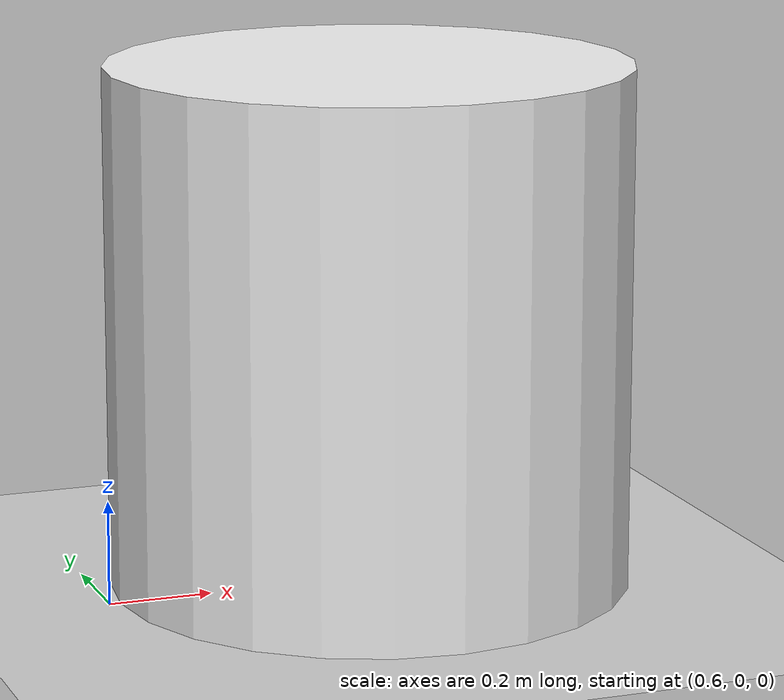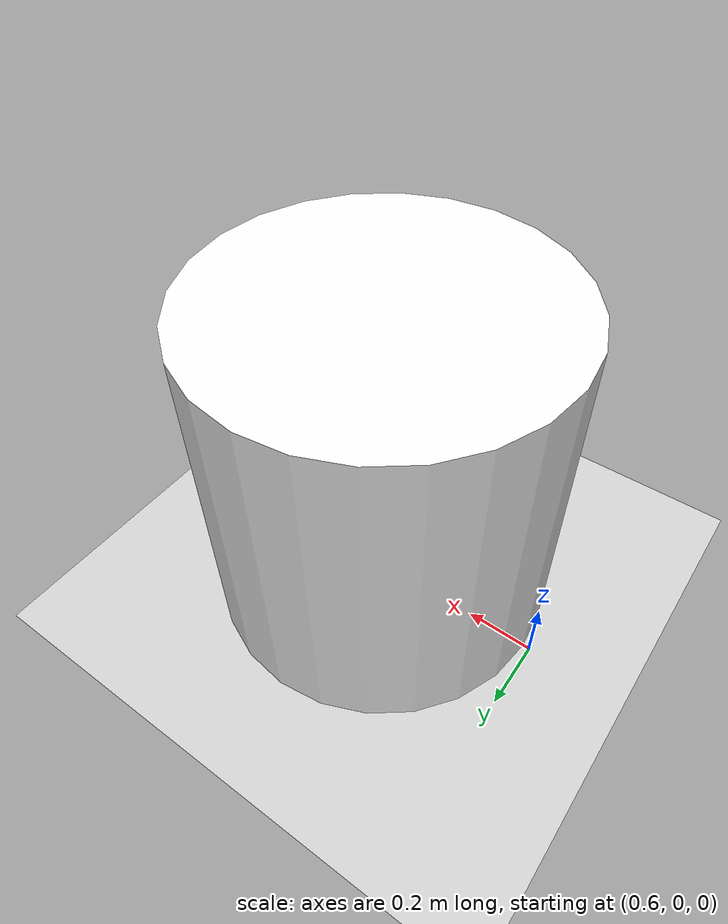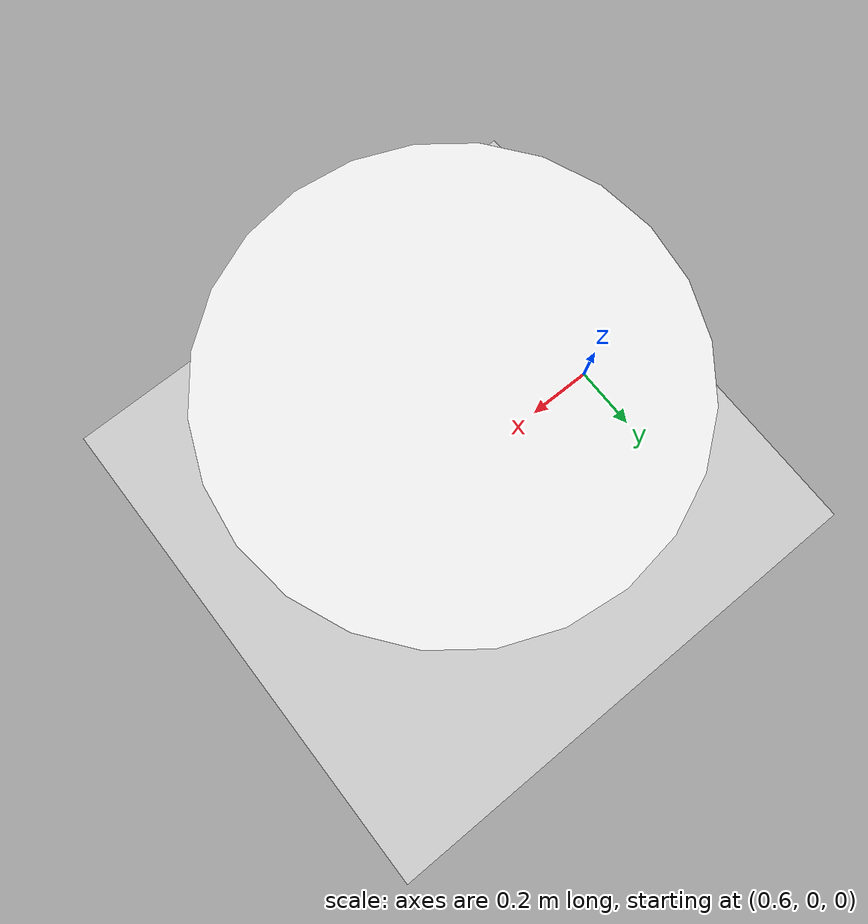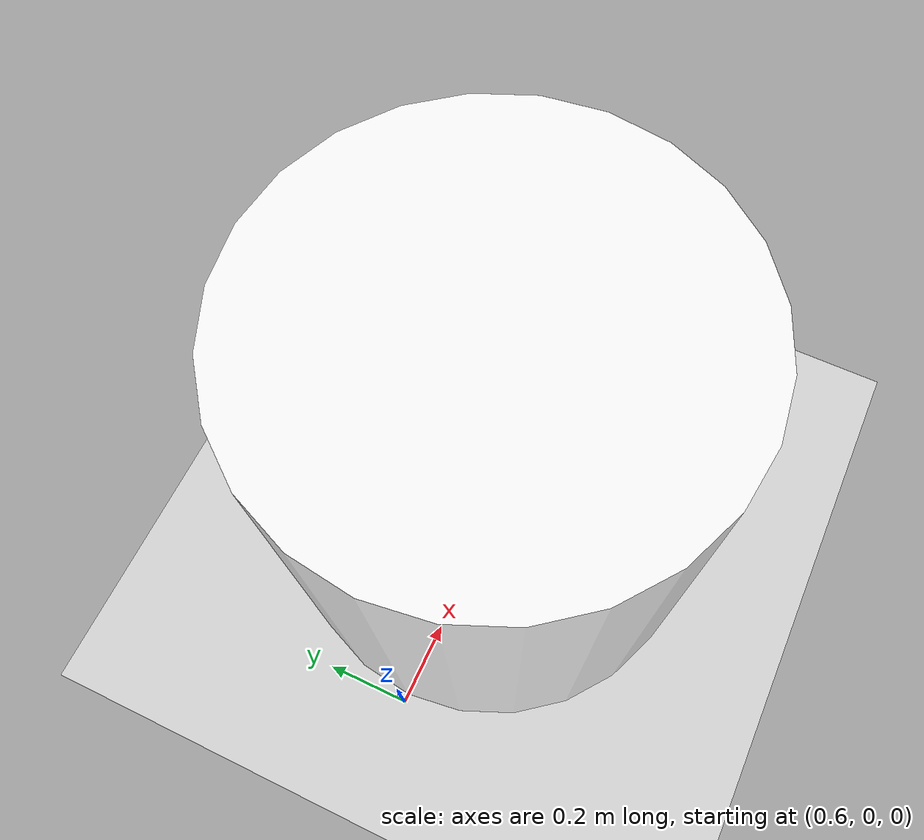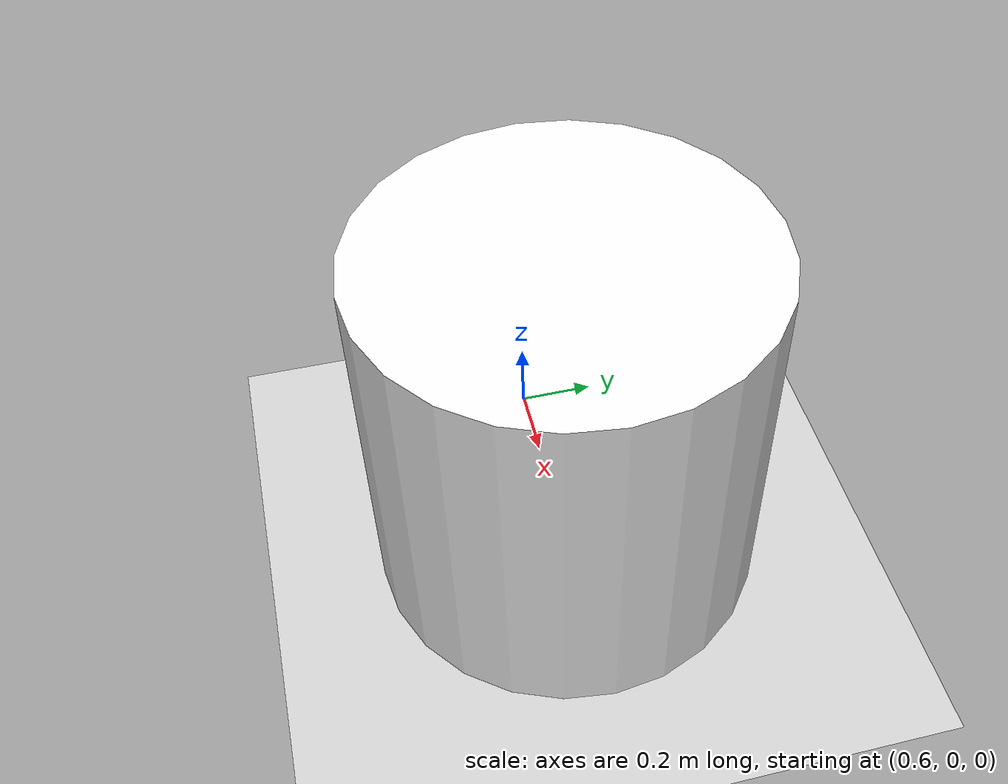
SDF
<?xml version="1.0" ?>
<sdf version="1.9">
  <world name="demo_cylinder">

    <!-- ── Core simulation plugins ── -->
    <plugin filename="gz-sim-physics-system"
            name="gz::sim::systems::Physics"/>
    <plugin filename="gz-sim-user-commands-system"
            name="gz::sim::systems::UserCommands"/>
    <plugin filename="gz-sim-scene-broadcaster-system"
            name="gz::sim::systems::SceneBroadcaster"/>
    <!-- Sensors system drives the render thread (needed for PreRender events). -->
    <plugin filename="gz-sim-sensors-system"
            name="gz::sim::systems::Sensors">
      <render_engine>ogre2</render_engine>
    </plugin>
    <!-- Particle emitter system — processes ParticleEmitterCmd to toggle emitters. -->
    <plugin filename="gz-sim-particle-emitter-system"
            name="gz::sim::systems::ParticleEmitter"/>

    <!-- ── Physics ── -->
    <physics name="1ms" type="dart">
      <max_step_size>0.001</max_step_size>
      <real_time_factor>1.0</real_time_factor>
      <dart>
        <collision_detector>bullet</collision_detector>
      </dart>
    </physics>

    <!-- ── Lighting ── -->
    <scene>
      <ambient>0.4 0.4 0.4 1</ambient>
      <background>0.7 0.7 0.8 1</background>
      <shadows>true</shadows>
    </scene>

    <light type="directional" name="sun">
      <cast_shadows>true</cast_shadows>
      <pose>0 0 10 0 -0 0</pose>
      <diffuse>0.8 0.8 0.8 1</diffuse>
      <specular>0.2 0.2 0.2 1</specular>
      <direction>-0.5 0.1 -0.9</direction>
    </light>

    <!-- ── Ground plane ── -->
    <model name="ground_plane">
      <static>true</static>
      <link name="link">
        <collision name="collision">
          <geometry>
            <plane><normal>0 0 1</normal><size>20 20</size></plane>
          </geometry>
        </collision>
        <visual name="visual">
          <geometry>
            <plane><normal>0 0 1</normal><size>20 20</size></plane>
          </geometry>
          <material>
            <ambient>0.8 0.8 0.8 1</ambient>
            <diffuse>0.8 0.8 0.8 1</diffuse>
          </material>
        </visual>
      </link>
    </model>

    <!-- ── Paint target: cylinder (r=0.5 m, h=1 m) at x=1.12 ── -->
    <model name="cylinder">
      <static>true</static>
      <pose>1.12 0 0.5 0 0 0</pose>
      <link name="link">
        <collision name="collision">
          <geometry><cylinder><radius>0.5</radius><length>1</length></cylinder></geometry>
        </collision>
        <visual name="cylinder_visual">
          <geometry><cylinder><radius>0.5</radius><length>1</length></cylinder></geometry>
          <material>
            <ambient>0.95 0.95 0.95 1</ambient>
            <diffuse>0.95 0.95 0.95 1</diffuse>
            <specular>0.1 0.1 0.1 1</specular>
          </material>
        </visual>
      </link>
    </model>

  </world>
</sdf>
